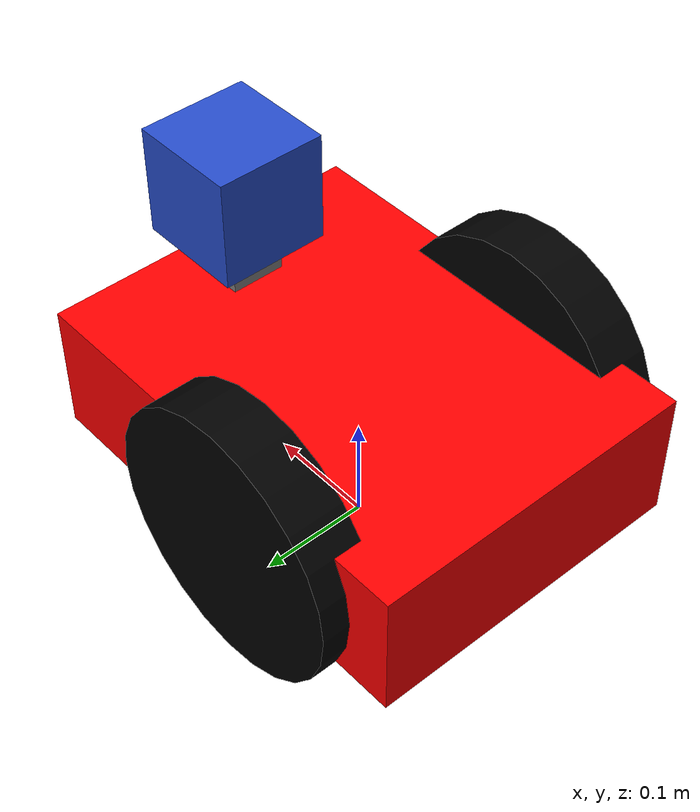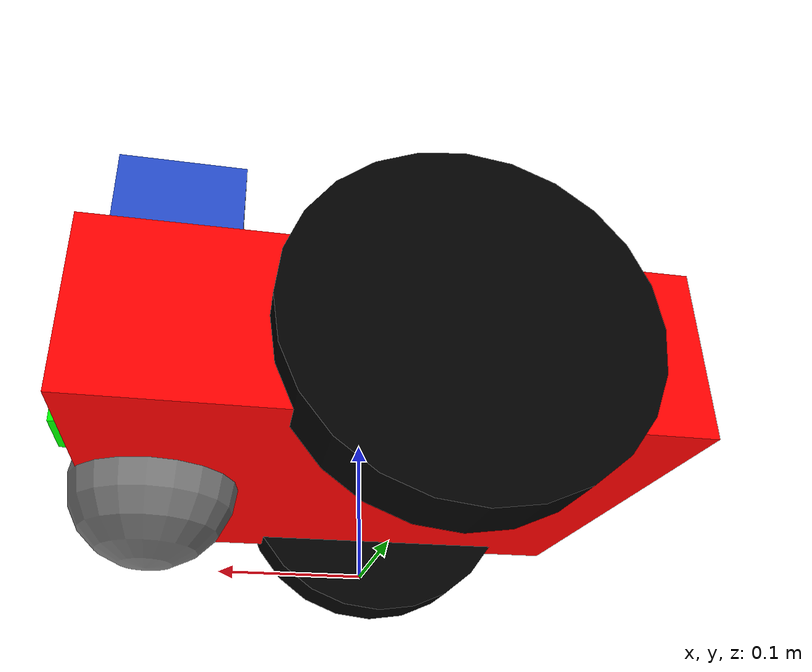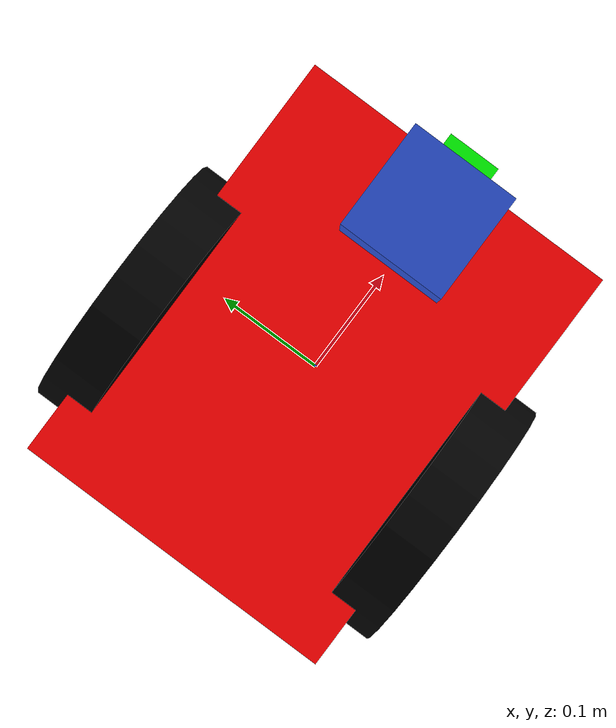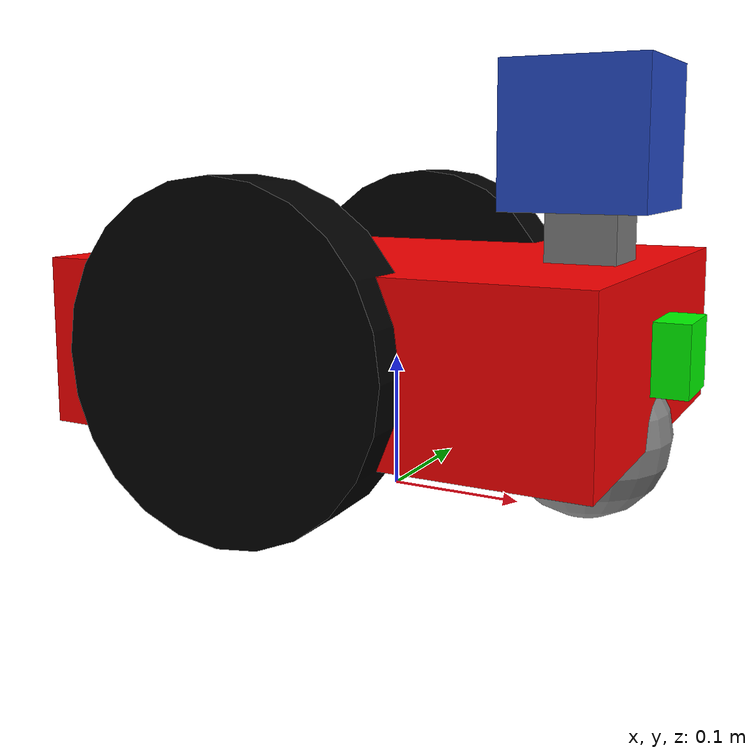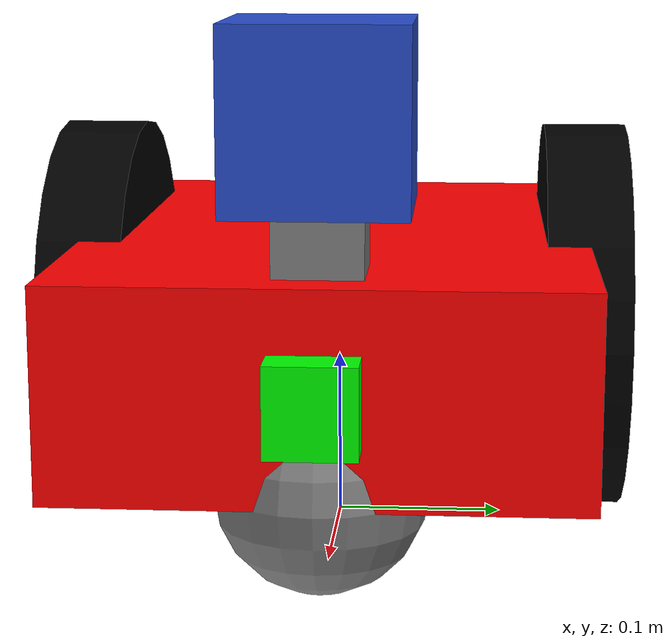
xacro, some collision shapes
<?xml version='1.0'?>

<robot name="my_robot" xmlns:xacro="http://www.ros.org/wiki/xacro">

    <xacro:include filename="$(find my_robot)/urdf/my_robot.gazebo" />

    <xacro:property name="bodymass" value="10" />
    <xacro:property name="bodylength" value="0.4" />
    <xacro:property name="bodywidth" value="0.3" />
    <xacro:property name="bodyheight" value="0.12" />
    <xacro:property name="body_ixx" value="${bodymass/12*(pow(bodyheight,2) + pow(bodywidth,2))}" />
    <xacro:property name="body_iyy" value="${bodymass/12*(pow(bodylength,2) + pow(bodyheight,2))}" />
    <xacro:property name="body_izz" value="${bodymass/12*(pow(bodylength,2) + pow(bodywidth,2))}" />

    <xacro:property name="wheelmass" value="2" />
    <xacro:property name="wheelwidth" value="0.05" />
    <xacro:property name="wheelradius" value="0.12" />
    <xacro:property name="wheel_ixx" value="${wheelmass/12*(3*pow(wheelradius,2) + pow(wheelwidth,2))}" />
    <xacro:property name="wheel_iyy" value="${wheelmass/12*(3*pow(wheelradius,2) + pow(wheelwidth,2))}" />
    <xacro:property name="wheel_izz" value="${wheelmass/2*pow(wheelradius,2)}" />

    <xacro:property name="castermass" value="0.5" />
    <xacro:property name="casterradius" value="0.06" />
    <xacro:property name="casterinertia" value="${2/5*castermass*casterradius}" />

    <material name="red">
        <color rgba="1 0 0 1" />
    </material>

    <material name="green">
        <color rgba="0 1 0 1" />
    </material>

    <material name="blue">
        <color rgba="0 0 0.8 1" />
    </material>

    <material name="black">
        <color rgba="0 0 0 1" />
    </material>

    <material name="grey">
        <color rgba="0.5 0.5 0.5 1" />
    </material>

    <xacro:macro name="wheel_link" params="prefix">
        <link name="${prefix}_wheel">
            <visual>
                <geometry>
                    <cylinder radius="${wheelradius}" length="${wheelwidth}" />
                </geometry>
                <material name="black" />
            </visual>
            <collision>
                <geometry>
                    <cylinder radius="${wheelradius}" length="${wheelwidth}" />
                </geometry>
            </collision>
            <inertial>
                <mass value="${wheelmass}" />
                <inertia ixx="${wheel_ixx}" ixy="0" ixz="0" iyy="${wheel_iyy}" iyz="0.0" izz="${wheel_izz}" />
            </inertial>
        </link>
    </xacro:macro>
    <xacro:macro name="wheel_joint" params="prefix parentlink x y z">
        <joint name="${prefix}_wheel_joint" type="continuous">
            <axis xyz="0 0 1" />
            <parent link="${parentlink}" />
            <child link="${prefix}_wheel" />
            <origin xyz="${x} ${y} ${z}" rpy="-1.5707 0 0" />
            <limit effort="10000" velocity="1000"/>
            <dynamics damping="1.5" friction="1.0"/>
        </joint>
    </xacro:macro>

    <link name="robot_footprint"></link>

    <joint name="robot_footprint_joint" type="fixed">
        <origin xyz="0 0 0.12" rpy="0 0 0" />
        <parent link="robot_footprint" />
        <child link="chassis" />
    </joint>

    <link name='chassis'>
        <inertial>
            <mass value="${bodymass}" />
            <origin xyz="0.0 0 0" rpy="0 0 0" />
            <inertia ixx="${body_ixx}" ixy="0" ixz="0" iyy="${body_iyy}" iyz="0" izz="${body_izz}" />
        </inertial>

        <collision name='chassis_collision'>
            <origin xyz="0 0 0" rpy="0 0 0" />
            <geometry>
                <box size="${bodylength} ${bodywidth} ${bodyheight}" />
            </geometry>
        </collision>

        <visual name='chassis_visual'>
            <origin xyz="0 0 0" rpy="0 0 0" />
            <geometry>
                <box size="${bodylength} ${bodywidth} ${bodyheight}" />
            </geometry>
            <material name="red"/>
        </visual>
    </link>

    <link name="front_caster_of_wheel">
        <collision name='front_caster_collision'>
            <origin xyz="0 0 0" rpy="0 0 0" />
            <geometry>
                <sphere radius="${casterradius}" />
            </geometry>
            <material name="grey"/>
        </collision>

        <visual name='front_caster_visual'>
            <origin xyz="0 0 0" rpy="0 0 0" />
            <geometry>
                <sphere radius="${casterradius}" />
            </geometry>
            <material name="grey"/>
        </visual>

        <inertial>
            <mass value="${castermass}" />
            <inertia ixx="${casterinertia}" ixy="0" ixz="0" iyy="${casterinertia}" iyz="0.0" izz="${casterinertia}" />
        </inertial>
    </link>

    <joint name="front_caster_of_wheel_joint" type="continuous">
        <axis xyz="0 0 1" />
        <parent link="chassis" />
        <child link="front_caster_of_wheel" />
        <origin xyz="0.15 0.0 -0.06" rpy="0.0 0.0 0.0" />
    </joint>

    <xacro:wheel_link prefix="right" />
    <xacro:wheel_joint prefix="right" parentlink="chassis" x="-0.04" y="-0.15" z="0" />

    <xacro:wheel_link prefix="left" />
    <xacro:wheel_joint prefix="left" parentlink="chassis" x="-0.04" y="0.15" z="0" />

    <!-- hh means hokuyo holder -->
    <xacro:property name="hh_mass" value="2" />
    <xacro:property name="hh_width" value="0.05" />
    <xacro:property name="hh_inertia" value="${hh_mass/12*(pow(hh_width,2) + pow(hh_width,2))}" />

    <link name="hokuyo_holder">
        <inertial>
            <mass value="${hh_mass}" />
            <origin xyz="0.0 0 0" rpy="0 0 0" />
            <inertia ixx="${hh_inertia}" ixy="0" ixz="0" iyy="${hh_inertia}" iyz="0" izz="${hh_inertia}" />
        </inertial>

        <collision name='hh_collision'>
            <origin xyz="0 0 0" rpy="0 0 0" />
            <geometry>
                <box size="${hh_width} ${hh_width} ${hh_width}" />
            </geometry>
        </collision>

        <visual name='hh_visual'>
            <origin xyz="0 0 0" rpy="0 0 0" />
            <geometry>
                <box size="${hh_width} ${hh_width} ${hh_width}" />
            </geometry>
            <material name="grey"/>
        </visual>
    </link>

    <joint name="hh_joint" type="fixed">
        <origin xyz="0.15 0 0.085" rpy="0 0 0" />
        <parent link="chassis" />
        <child link="hokuyo_holder" />
    </joint>

    <link name="camera">
        <inertial>
            <mass value="0.1" />
            <origin xyz="0 0 0" rpy="0 0 0" />
            <inertia ixx="1e-6" ixy="0" ixz="0" iyy="1e-6" iyz="0" izz="1e-6" />
        </inertial>

        <collision name='camera_collision'>
            <origin xyz="0 0 0" rpy="0 0 0" />
            <geometry>
                <box size="0.05 0.05 0.05" />
            </geometry>
        </collision>

        <visual name='camera_visual'>
            <origin xyz="0 0 0" rpy="0 0 0" />
            <geometry>
                <box size="0.05 0.05 0.05" />
            </geometry>
            <material name="green"/>
        </visual>
    </link>

    <joint type="fixed" name="camera_joint">
        <origin xyz="0.2 0 0" rpy="0 0 0" />
        <child link="camera" />
        <parent link="chassis" />
        <axis xyz="0 1 0" rpy="0 0 0" />
    </joint>

    <joint name="camera_optical_joint" type="fixed">
      <origin xyz="0 0 0" rpy="-1.5707 0 -1.5707"/>
      <parent link="camera"/>
      <child link="camera_link_optical"/>
    </joint>

    <link name="camera_link_optical">
    </link>

    <link name="hokuyo">
        <inertial>
            <mass value="1e-5" />
            <origin xyz="0 0 0" rpy="0 0 0" />
            <inertia ixx="1e-6" ixy="0" ixz="0" iyy="1e-6" iyz="0" izz="1e-6" />
        </inertial>

        <collision name='hokuyo_collision'>
            <origin xyz="0 0 0" rpy="0 0 0" />
            <geometry>
                <box size="0.1 0.1 0.1" />
            </geometry>
        </collision>

        <visual name='hokuyo_visual'>
            <origin xyz="0 0 0" rpy="0 0 0" />
            <geometry>
                <mesh filename="package://my_robot/meshes/hokuyo.dae" />
            </geometry>
        </visual>
    </link>

    <joint type="fixed" name="hokuyo_joint">
        <origin xyz="0 0 0.06" rpy="0 0 0" />
        <child link="hokuyo" />
        <parent link="hokuyo_holder" />
        <axis xyz="0 1 0" rpy="0 0 0" />
    </joint>

    <gazebo reference="chassis">
        <material>Gazebo/Red</material>
    </gazebo>
    <gazebo reference="front_caster_of_wheel">
        <material>Gazebo/Grey</material>
    </gazebo>
    <gazebo reference="left_wheel">
        <material>Gazebo/Black</material>
    </gazebo>
    <gazebo reference="right_wheel">
        <material>Gazebo/Black</material>
    </gazebo>
    <gazebo reference="camera">
        <material>Gazebo/Green</material>
    </gazebo>
    <gazebo reference="hokuyo">
        <material>Gazebo/Blue</material>
    </gazebo>

</robot>
